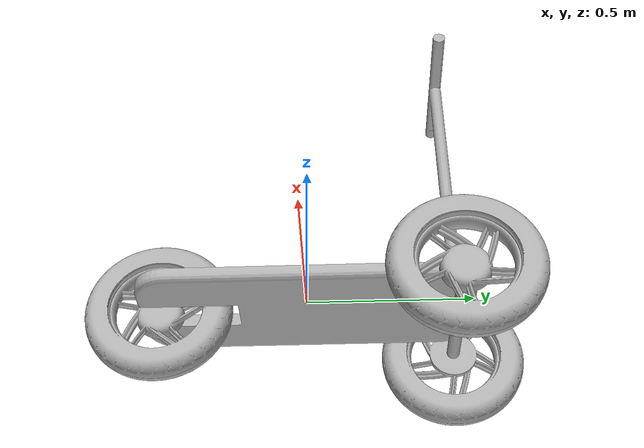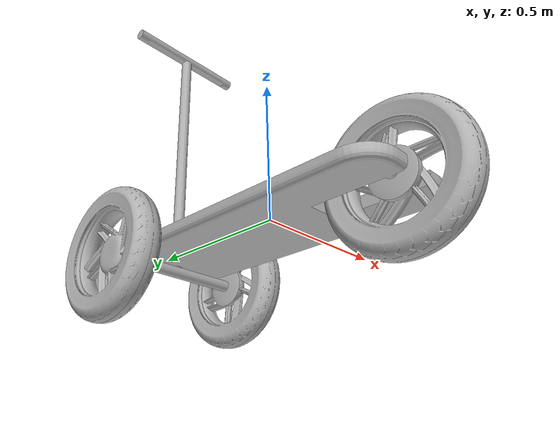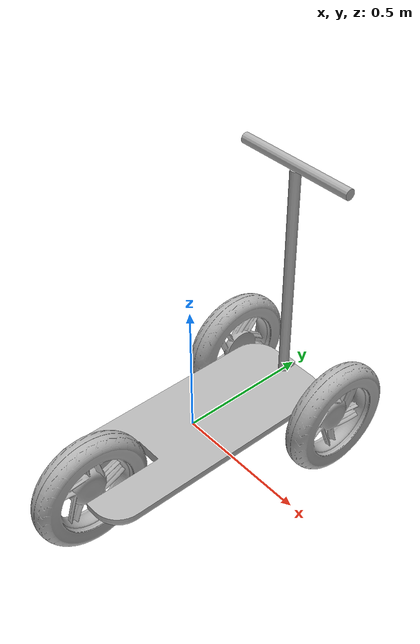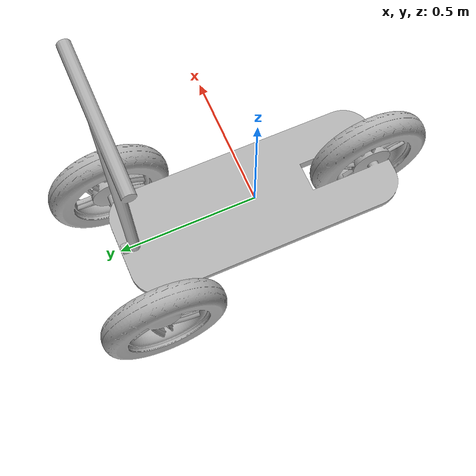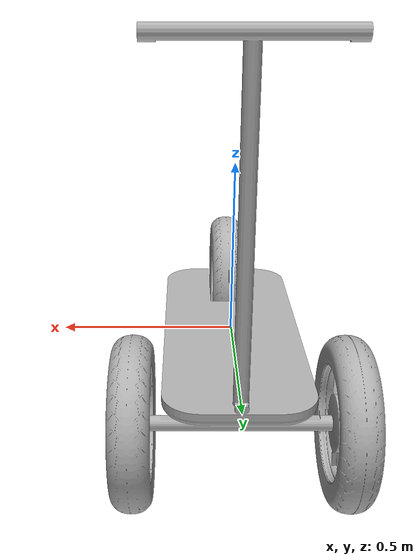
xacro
<?xml version="1.0" ?>
<robot name="scooter_v2" xmlns:xacro="http://www.ros.org/wiki/xacro">

<xacro:include filename="$(find scooter_v2_description)/urdf/materials.xacro" />
<xacro:include filename="$(find scooter_v2_description)/urdf/scooter_v2.trans" />
<xacro:include filename="$(find scooter_v2_description)/urdf/scooter_v2.gazebo" />
<link name="base_link">
  <inertial>
    <origin rpy="0 0 0" xyz="-8.772514048968283e-05 0.029936486941217567 -0.019764686516558837"/>
    <mass value="110.6919164886718"/>
    <inertia ixx="8.191193" ixy="-0.004608" ixz="-2e-06" iyy="1.540241" iyz="0.000218" izz="9.702351"/>
  </inertial>
  <visual>
    <origin rpy="0 0 0" xyz="0 0 0"/>
    <geometry>
      <mesh filename="package://scooter_v2_description/meshes/base_link.stl" scale="0.001 0.001 0.001"/>
    </geometry>
    <material name="silver"/>
  </visual>
  <collision>
    <origin rpy="0 0 0" xyz="0 0 0"/>
    <geometry>
      <mesh filename="package://scooter_v2_description/meshes/base_link.stl" scale="0.001 0.001 0.001"/>
    </geometry>
  </collision>
</link>

<link name="component3_1">
  <inertial>
    <origin rpy="0 0 0" xyz="0.026596523824912066 5.606915625455677e-06 1.6045021391686287e-05"/>
    <mass value="11.958544616161538"/>
    <inertia ixx="0.319136" ixy="-0.0" ixz="6e-06" iyy="0.170903" iyz="1.2e-05" izz="0.170958"/>
  </inertial>
  <visual>
    <origin rpy="0 0 0" xyz="-0.24 -0.45 0.055634"/>
    <geometry>
      <mesh filename="package://scooter_v2_description/meshes/component3_1.stl" scale="0.001 0.001 0.001"/>
    </geometry>
    <material name="silver"/>
  </visual>
  <collision>
    <origin rpy="0 0 0" xyz="-0.24 -0.45 0.055634"/>
    <geometry>
      <mesh filename="package://scooter_v2_description/meshes/component3_1.stl" scale="0.001 0.001 0.001"/>
    </geometry>
  </collision>
</link>

<link name="component4_1">
  <inertial>
    <origin rpy="0 0 0" xyz="-0.026596725854599323 -5.606915627287545e-06 1.6045021391755676e-05"/>
    <mass value="11.958544616161538"/>
    <inertia ixx="0.319136" ixy="-0.0" ixz="-6e-06" iyy="0.170903" iyz="-1.2e-05" izz="0.170958"/>
  </inertial>
  <visual>
    <origin rpy="0 0 0" xyz="0.237 -0.45 0.055634"/>
    <geometry>
      <mesh filename="package://scooter_v2_description/meshes/component4_1.stl" scale="0.001 0.001 0.001"/>
    </geometry>
    <material name="silver"/>
  </visual>
  <collision>
    <origin rpy="0 0 0" xyz="0.237 -0.45 0.055634"/>
    <geometry>
      <mesh filename="package://scooter_v2_description/meshes/component4_1.stl" scale="0.001 0.001 0.001"/>
    </geometry>
  </collision>
</link>

<link name="component5_1">
  <inertial>
    <origin rpy="0 0 0" xyz="0.0015782208828126775 -1.7763568394002505e-15 -0.016542143618229567"/>
    <mass value="4.471900433694431"/>
    <inertia ixx="0.000859" ixy="-0.0" ixz="-6e-06" iyy="0.0865" iyz="-0.0" izz="0.086567"/>
  </inertial>
  <visual>
    <origin rpy="0 0 0" xyz="0.0 -0.45 0.04"/>
    <geometry>
      <mesh filename="package://scooter_v2_description/meshes/component5_1.stl" scale="0.001 0.001 0.001"/>
    </geometry>
    <material name="silver"/>
  </visual>
  <collision>
    <origin rpy="0 0 0" xyz="0.0 -0.45 0.04"/>
    <geometry>
      <mesh filename="package://scooter_v2_description/meshes/component5_1.stl" scale="0.001 0.001 0.001"/>
    </geometry>
  </collision>
</link>

<link name="component2_1">
  <inertial>
    <origin rpy="0 0 0" xyz="-0.000528661036034399 -7.216449660063518e-16 0.6062789186759571"/>
    <mass value="13.35004127273913"/>
    <inertia ixx="1.248333" ixy="-0.0" ixz="0.002183" iyy="1.333981" iyz="-0.0" izz="0.08835"/>
  </inertial>
  <visual>
    <origin rpy="0 0 0" xyz="-0.0 -0.45 0.04"/>
    <geometry>
      <mesh filename="package://scooter_v2_description/meshes/component2_1.stl" scale="0.001 0.001 0.001"/>
    </geometry>
    <material name="silver"/>
  </visual>
  <collision>
    <origin rpy="0 0 0" xyz="-0.0 -0.45 0.04"/>
    <geometry>
      <mesh filename="package://scooter_v2_description/meshes/component2_1.stl" scale="0.001 0.001 0.001"/>
    </geometry>
  </collision>
</link>

<link name="component6_1">
  <inertial>
    <origin rpy="0 0 0" xyz="0.02607772224394818 0.00015998258454802405 -1.0368653439750408e-05"/>
    <mass value="11.852599139698373"/>
    <inertia ixx="0.319201" ixy="-4.5e-05" ixz="4e-06" iyy="0.170799" iyz="-8.8e-05" izz="0.170759"/>
  </inertial>
  <visual>
    <origin rpy="0 0 0" xyz="0.0325 0.444595 0.01992"/>
    <geometry>
      <mesh filename="package://scooter_v2_description/meshes/component6_1.stl" scale="0.001 0.001 0.001"/>
    </geometry>
    <material name="silver"/>
  </visual>
  <collision>
    <origin rpy="0 0 0" xyz="0.0325 0.444595 0.01992"/>
    <geometry>
      <mesh filename="package://scooter_v2_description/meshes/component6_1.stl" scale="0.001 0.001 0.001"/>
    </geometry>
  </collision>
</link>

<link name="component7_1">
  <inertial>
    <origin rpy="0 0 0" xyz="2.2553136083141452e-10 -0.015604613441576043 0.009218702276286584"/>
    <mass value="0.1038946187420488"/>
    <inertia ixx="7e-06" ixy="-0.0" ixz="-0.0" iyy="1.3e-05" iyz="-0.0" izz="1.4e-05"/>
  </inertial>
  <visual>
    <origin rpy="0 0 0" xyz="-0.0 -0.5 -0.0"/>
    <geometry>
      <mesh filename="package://scooter_v2_description/meshes/component7_1.stl" scale="0.001 0.001 0.001"/>
    </geometry>
    <material name="silver"/>
  </visual>
  <collision>
    <origin rpy="0 0 0" xyz="-0.0 -0.5 -0.0"/>
    <geometry>
      <mesh filename="package://scooter_v2_description/meshes/component7_1.stl" scale="0.001 0.001 0.001"/>
    </geometry>
  </collision>
</link>

<joint name="RW" type="continuous">
  <origin rpy="0 0 0" xyz="0.24 0.0 -0.015634"/>
  <parent link="component5_1"/>
  <child link="component3_1"/>
  <axis xyz="-1.0 -0.0 0.0"/>
</joint>

<joint name="LW" type="continuous">
  <origin rpy="0 0 0" xyz="-0.237 0.0 -0.015634"/>
  <parent link="component5_1"/>
  <child link="component4_1"/>
  <axis xyz="-1.0 -0.0 0.0"/>
</joint>

<joint name="Rigid12" type="fixed">
  <origin rpy="0 0 0" xyz="0.0 0.45 -0.04"/>
  <parent link="base_link"/>
  <child link="component5_1"/>
</joint>

<joint name="Rigid13" type="fixed">
  <origin rpy="0 0 0" xyz="0.0 0.0 0.0"/>
  <parent link="component5_1"/>
  <child link="component2_1"/>
</joint>

<joint name="BW" type="continuous">
  <origin rpy="0 0 0" xyz="-0.0325 -0.444595 -0.01992"/>
  <parent link="base_link"/>
  <child link="component6_1"/>
  <axis xyz="-1.0 -0.000258 -0.000205"/>
</joint>

<joint name="LJ" type="fixed">
  <origin rpy="0 0 0" xyz="0.0 0.5 0.0"/>
  <parent link="base_link"/>
  <child link="component7_1"/>
</joint>

</robot>

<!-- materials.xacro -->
<robot name="scooter_v2" xmlns:xacro="http://www.ros.org/wiki/xacro" >

<material name="silver">
  <color rgba="0.700 0.700 0.700 1.000"/>
</material>

</robot>

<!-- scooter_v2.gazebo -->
<robot name="scooter_v2" xmlns:xacro="http://www.ros.org/wiki/xacro" >

<xacro:property name="body_color" value="Gazebo/Silver" />

<gazebo>
  <plugin filename="libgazebo_ros_control.so" name="control"/>
</gazebo>
<gazebo reference="base_link">
  <material>${body_color}</material>
  <mu1>0.2</mu1>
  <mu2>0.2</mu2>
  <selfCollide>true</selfCollide>
  <gravity>true</gravity>
</gazebo>

<gazebo reference="component3_1">
  <material>${body_color}</material>
  <mu1>0.2</mu1>
  <mu2>0.2</mu2>
  <selfCollide>true</selfCollide>
</gazebo>

<gazebo reference="component4_1">
  <material>${body_color}</material>
  <mu1>0.2</mu1>
  <mu2>0.2</mu2>
  <selfCollide>true</selfCollide>
</gazebo>

<gazebo reference="component5_1">
  <material>${body_color}</material>
  <mu1>0.2</mu1>
  <mu2>0.2</mu2>
  <selfCollide>true</selfCollide>
</gazebo>

<gazebo reference="component2_1">
  <material>${body_color}</material>
  <mu1>0.2</mu1>
  <mu2>0.2</mu2>
  <selfCollide>true</selfCollide>
</gazebo>

<gazebo reference="component6_1">
  <material>${body_color}</material>
  <mu1>0.2</mu1>
  <mu2>0.2</mu2>
  <selfCollide>true</selfCollide>
</gazebo>

<gazebo reference="component7_1">
  <material>${body_color}</material>
  <mu1>0.2</mu1>
  <mu2>0.2</mu2>
  <selfCollide>true</selfCollide>
</gazebo>

<gazebo>
  <plugin name="differential_drive_controller" filename="libgazebo_ros_diff_drive.so">
    <!-- Plugin update rate in Hz -->
    <updateRate>100</updateRate>
    <!-- Name of left joint, defaults to `left_joint` -->
    <leftJoint>LW</leftJoint>
    <!-- Name of right joint, defaults to `right_joint` -->
    <rightJoint>RW</rightJoint>
    <!-- The distance from the center of one wheel to the other, in meters, defaults to 0.34 m -->
    <wheelSeparation>0.5370</wheelSeparation>
    <!-- Diameter of the wheels, in meters, defaults to 0.15 m -->
    <wheelDiameter>0.446</wheelDiameter>
    <!-- Wheel acceleration, in rad/s^2, defaults to 0.0 rad/s^2 -->
    <wheelAcceleration>1.0</wheelAcceleration>
    <!-- Maximum torque which the wheels can produce, in Nm, defaults to 5 Nm -->
    <wheelTorque>200</wheelTorque>
    <!-- Topic to receive geometry_msgs/Twist message commands, defaults to `cmd_vel` -->
    <commandTopic>cmd_vel</commandTopic>
    <!-- Topic to publish nav_msgs/Odometry messages, defaults to `odom` -->
    <odometryTopic>odom</odometryTopic>
    <!-- Odometry frame, defaults to `odom` -->
    <odometryFrame>odom</odometryFrame>
    <!-- Robot frame to calculate odometry from, defaults to `base_footprint` -->
    <robotBaseFrame>base_link</robotBaseFrame>
    <!-- Odometry source, 0 for ENCODER, 1 for WORLD, defaults to WORLD -->
    <odometrySource>1</odometrySource>
    <!-- Set to true to publish transforms for the wheel links, defaults to false -->
    <publishWheelTF>true</publishWheelTF>
    <!-- Set to true to publish transforms for the odometry, defaults to true -->
    <publishOdom>true</publishOdom>
    <!-- Set to true to publish sensor_msgs/JointState on /joint_states for the wheel joints, defaults to false -->
    <publishWheelJointState>true</publishWheelJointState>
    <!-- Set to true to swap right and left wheels, defaults to true -->
    <legacyMode>false</legacyMode>
  </plugin>
</gazebo>

  <gazebo reference="component7_1">
    <sensor type="ray" name="LiDaR_sensor">
      <pose>0 0 0 0 0 0</pose>
      <visualize>true</visualize>
      <update_rate>40</update_rate>
      <ray>
        <scan>
          <horizontal>
            <samples>720</samples>
            <resolution>1</resolution>
              <min_angle>1.0472</min_angle>
              <max_angle>2.0944</max_angle>
          </horizontal>
        </scan>
        <range>
          <min>0.10</min>
          <max>30</max>
          <resolution>0.5</resolution>
        </range>
        <noise>
          <type>gaussian</type>
         <mean>0.0</mean>
          <stddev>0.001</stddev>
        </noise>
      </ray>
      <always_on>1</always_on>
      <plugin name="gazebo_ros_head_hokuyo_controller" filename="libgazebo_ros_laser.so">
        <topicName>base_scan</topicName>
        <frameName>component7_1</frameName>
      </plugin>
    </sensor>
  </gazebo>

   <gazebo reference="base_link">
    <gravity>true</gravity>
    <sensor name="imu_sensor" type="imu">
      <always_on>true</always_on>
      <update_rate>100</update_rate>
      <visualize>true</visualize>
      <topic>__default_topic__</topic>
      <plugin filename="libgazebo_ros_imu_sensor.so" name="imu_plugin">
        <topicName>imu</topicName>
        <bodyName>imu_link</bodyName>
        <updateRateHZ>10.0</updateRateHZ>
        <gaussianNoise>0.0</gaussianNoise>
        <xyzOffset>0 0 0</xyzOffset>
        <rpyOffset>0 0 0</rpyOffset>
        <frameName>base_link</frameName>
        <initialOrientationAsReference>false</initialOrientationAsReference>
      </plugin>
      <pose>0 0 0 0 0 0</pose>
    </sensor>
  </gazebo>

<gazebo>
   <plugin name="novatel_gps_sim" filename="libhector_gazebo_ros_gps.so">
    <alwaysOn>1</alwaysOn>
    <service>1</service>
    <updateRate>10.0</updateRate>
    <bodyName>base_link</bodyName>
    <topicName>fix</topicName>
    <velocityTopicName>fix_velocity</velocityTopicName>
    <drift>5.0 5.0 5.0</drift>
    <gaussianNoise>0.1 0.1 0.1</gaussianNoise>
    <velocityDrift>0 0 0</velocityDrift>
    <velocityGaussianNoise>0.1 0.1 0.1</velocityGaussianNoise>
   </plugin>
</gazebo>

</robot>
